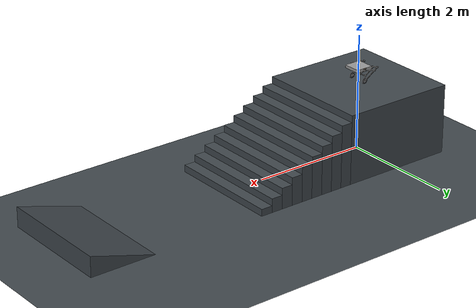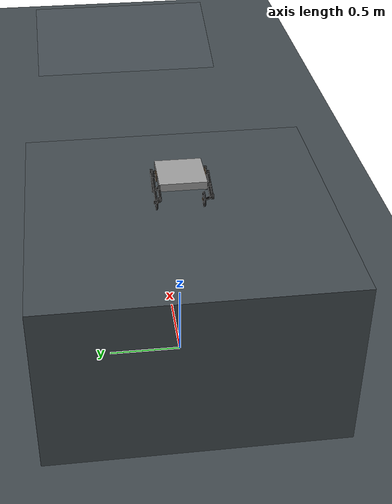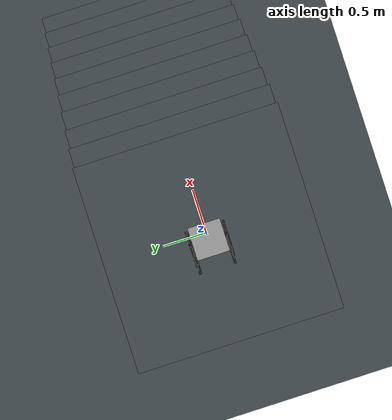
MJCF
<mujoco model="serial_five_link_wheel_leg">
    <compiler angle="degree" autolimits="true"/>
    <option timestep="0.002" integrator="implicitfast" gravity="0 0 -9.81"/>

    <visual>
        <global offwidth="1920" offheight="1080"/>
        <quality shadowsize="8192" offsamples="8" numslices="32" numstacks="32"/>
        <map znear="0.01" zfar="50" shadowclip="2.0" shadowscale="0.5"/>
        <headlight ambient="0.22 0.22 0.22" diffuse="0.35 0.35 0.35" specular="0.08 0.08 0.08"/>
    </visual>

    <statistic center="2.4 0 0.6" extent="5.4"/>

    <default>
        <joint axis="0 1 0" damping="0.01"/>
        <geom rgba="0.25 0.28 0.30 1" contype="1" conaffinity="1"/>
        <default class="leg_link">
            <geom type="box" rgba="0.05 0.05 0.05 1"/>
        </default>
        <default class="joint_marker">
            <geom type="cylinder" size="0.016 0.008 0.016" euler="90 0 0" rgba="0.15 0.15 0.15 1"/>
        </default>
        <default class="wheel">
            <geom type="cylinder" size="0.05" contype="1" conaffinity="1"
                  condim="6" friction="0.8 0.005 0.0001"
                  solref="0.005 1" solimp="0.9 0.95 0.001"/>
        </default>
    </default>

    <asset>
        <texture name="skybox" type="skybox" builtin="gradient"
                 rgb1="0.78 0.84 0.90" rgb2="0.96 0.98 1.00"
                 width="512" height="512"/>
        <material name="ground_mat" rgba="0.55 0.56 0.55 1"
                  reflectance="0.00" specular="0.18" shininess="0.25"/>
        <material name="stair_mat" rgba="0.50 0.43 0.35 1"
                  reflectance="0.00" specular="0.14" shininess="0.20"/>
        <material name="ramp_mat" rgba="0.50 0.43 0.35 1"
                  reflectance="0.00" specular="0.14" shininess="0.20"/>
        <mesh name="ramp_wedge" file="ramp_wedge.stl"/>
    </asset>

    <worldbody>
        <!-- 斜向主光负责投影，补光只提亮暗部，避免默认单顶灯的块状阴影观感 -->
        <light name="key_light" directional="true" castshadow="true"
               ambient="0.06 0.06 0.06" diffuse="0.78 0.76 0.72" specular="0.18 0.18 0.18"
               pos="-2.5 -3.0 4.0" dir="0.45 0.60 -1"/>
        <light name="fill_light" directional="true" castshadow="false"
               ambient="0.03 0.04 0.05" diffuse="0.22 0.24 0.27" specular="0 0 0"
               pos="3.0 4.0 3.0" dir="-0.50 -0.55 -1"/>

        <!-- 相机 -->
        <camera name="overview" pos="1.6 -2.4 1.1" xyaxes="0.832 0.555 0 -0.210 0.315 0.925"/>

        <!-- 地面 -->
        <geom name="ground" type="plane" size="200 200 0.1" contype="1" conaffinity="1"
              material="ground_mat"
              friction="1.0 0.001 0.0001" condim="6"/>

        <!-- 十级下行台阶：沿 +x 方向下降；顶层平台 2m x 2m，其余踏步深度 0.20m；每级落差 0.12m。 -->
        <body name="stairs" pos="0 0 0">
            <geom name="stair_step_10_top" type="box" pos="0.000 0 0.600" size="1.000 1.0 0.600"
                  contype="1" conaffinity="1" condim="6"
                  friction="1.0 0.001 0.0001"
                  material="stair_mat"/>
            <geom name="stair_step_9" type="box" pos="1.100 0 0.540" size="0.100 1.0 0.540"
                  contype="1" conaffinity="1" condim="6"
                  friction="1.0 0.001 0.0001"
                  material="stair_mat"/>
            <geom name="stair_step_8" type="box" pos="1.300 0 0.480" size="0.100 1.0 0.480"
                  contype="1" conaffinity="1" condim="6"
                  friction="1.0 0.001 0.0001"
                  material="stair_mat"/>
            <geom name="stair_step_7" type="box" pos="1.500 0 0.420" size="0.100 1.0 0.420"
                  contype="1" conaffinity="1" condim="6"
                  friction="1.0 0.001 0.0001"
                  material="stair_mat"/>
            <geom name="stair_step_6" type="box" pos="1.700 0 0.360" size="0.100 1.0 0.360"
                  contype="1" conaffinity="1" condim="6"
                  friction="1.0 0.001 0.0001"
                  material="stair_mat"/>
            <geom name="stair_step_5" type="box" pos="1.900 0 0.300" size="0.100 1.0 0.300"
                  contype="1" conaffinity="1" condim="6"
                  friction="1.0 0.001 0.0001"
                  material="stair_mat"/>
            <geom name="stair_step_4" type="box" pos="2.100 0 0.240" size="0.100 1.0 0.240"
                  contype="1" conaffinity="1" condim="6"
                  friction="1.0 0.001 0.0001"
                  material="stair_mat"/>
            <geom name="stair_step_3" type="box" pos="2.300 0 0.180" size="0.100 1.0 0.180"
                  contype="1" conaffinity="1" condim="6"
                  friction="1.0 0.001 0.0001"
                  material="stair_mat"/>
            <geom name="stair_step_2" type="box" pos="2.500 0 0.120" size="0.100 1.0 0.120"
                  contype="1" conaffinity="1" condim="6"
                  friction="1.0 0.001 0.0001"
                  material="stair_mat"/>
            <geom name="stair_step_1_bottom" type="box" pos="2.700 0 0.060" size="0.100 1.0 0.060"
                  contype="1" conaffinity="1" condim="6"
                  friction="1.0 0.001 0.0001"
                  material="stair_mat"/>
        </body>

        <!-- 飞坡：位于台阶末端前方 2.0m。 -->
        <body name="ramp" pos="4.8 0 0">
            <geom name="ramp_geom" type="mesh" mesh="ramp_wedge"
                  contype="1" conaffinity="1" condim="6"
                  friction="1.0 0.001 0.0001"
                  material="ramp_mat"/>
        </body>

        <!-- 基座（车身） -->
        <body name="base" pos="0 0 1.445">
            <freejoint name="base_free"/>
            <inertial pos="0 0 0" mass="15.0"
                      diaginertia="0.22517 0.11593 0.115485"/>
            <site name="imu" pos="0 0 0" size="0.01" rgba="1 0 0 1"/>
            <geom name="base_body" type="box" size="0.15 0.15 0.025" rgba="0.6 0.6 0.6 1"/>
            <geom name="left_hip_mount" type="box" pos="0 0.155 0" size="0.026 0.005 0.026"
                  rgba="0.21 0.16 0.10 1"/>
            <geom name="right_hip_mount" type="box" pos="0 -0.155 0" size="0.026 0.005 0.026"
                  rgba="0.21 0.16 0.10 1"/>

            <!-- ========== 左侧五连杆腿 ========== -->
            <body name="left_front_upper_link" pos="0.0547679943505 0.165 -0.0146750398573">
                <inertial pos="0 0 0" mass="0.13482"
                          diaginertia="3.651375000e-06 1.877543766e-04 1.863500016e-04"/>
                <joint name="left_front_hip_joint" pos="-0.0547679943505 0 0.0146750398573"
                       ref="15" damping="0.05"/>
                <geom name="left_front_upper_geom" class="leg_link"
                      size="0.0642 0.0075 0.0075" euler="0 15 0"/>
                <geom name="left_front_hip_pin" class="joint_marker"
                      pos="-0.0547679943505 0 0.0146750398573"/>

                <body name="left_front_lower_link" pos="0 0.01 -0.0523939581187">
                    <inertial pos="0 0 0" mass="0.1554"
                              diaginertia="4.2087500e-06 2.8657055e-04 2.8495180e-04"/>
                    <joint name="left_front_knee_joint" pos="0.0547679943505 0 0.0377189182614"/>
                    <geom name="left_front_lower_geom" class="leg_link"
                          size="0.074 0.0075 0.0075" euler="0 -34.555326848126 0"/>
                    <geom name="left_front_knee_pin" class="joint_marker"
                          pos="0.0547679943505 0 0.0377189182614"/>

                    <body name="left_lower_bridge_link" pos="-0.1391107056504 -0.01 0.0203682158611">
                        <inertial pos="0 0 0" mass="0.230811"
                                  diaginertia="6.251131250000e-06 9.337426768397e-04 9.313383955897e-04"/>
                        <joint name="left_bridge_joint" pos="0.084342711299 0 -0.0580871341226"/>
                        <geom name="left_lower_bridge_geom" class="leg_link"
                              size="0.10991 0.0075 0.0075" euler="0 34.555326848126 0"/>
                        <geom name="left_bridge_pin" class="joint_marker"
                              pos="0.084342711299 0 -0.0580871341226"/>
                        <site name="left_bridge_rear_connect" pos="-0.0251932774012 0.005 0.0173507024002"
                              size="0.004" rgba="0.86 0.60 0.16 0.75"/>

                        <body name="left_wheel_carrier_link" pos="-0.1309969287096 -0.01 0.0455861742441">
                            <inertial pos="0 0 0" mass="0.11718"
                                      diaginertia="3.173625000e-06 1.238159034e-04 1.225952784e-04"/>
                            <joint name="left_carrier_joint" pos="0.0466542174097 0 0.0125009598784"
                                   range="-50 25"/>
                            <geom name="left_wheel_carrier_geom" class="leg_link"
                                  size="0.0558 0.0075 0.0075" euler="0 -15 0"/>
                            <geom name="left_carrier_pin" class="joint_marker"
                                  pos="0.0466542174097 0 0.0125009598784"/>

                            <body name="left_lower_leg_link" pos="0.0843427112999 0.01 -0.1027190243719">
                                <inertial pos="0 0 0" mass="0.349772111111"
                                          diaginertia="9.472994675923e-06 3.240972841707e-03 3.237329382216e-03"/>
                                <joint name="left_lower_leg_joint" pos="-0.1309969287096 0 0.0902180644934"
                                       range="-23 70"/>
                                <geom name="left_lower_leg_geom" class="leg_link"
                                      size="0.1665581481481 0.0075 0.0075" euler="0 34.555326848126 0"/>
                                <geom name="left_lower_leg_pin" class="joint_marker"
                                      pos="-0.1309969287096 0 0.0902180644934"/>
                                <site name="left_lower_leg_rear_connect" pos="-0.071847494811 0.005 0.0494816327711"
                                      size="0.004" rgba="0.86 0.60 0.16 0.75"/>

                                <body name="left_wheel" pos="0.1309969287096 -0.015 -0.0902180644934">
                                    <inertial pos="0 0.005 0" mass="0.353429173529"
                                              diaginertia="0.000223838477 0.000223838477 0.000441786467"/>
                                    <joint name="left_wheel_joint" pos="0 0 0" limited="false"/>
                                    <geom name="left_wheel_geom" class="wheel" fromto="0 0 0 0 0.01 0"
                                          rgba="0.04 0.04 0.045 1"/>
                                    <geom name="left_wheel_hub_geom" type="cylinder" fromto="0 -0.001 0 0 0.011 0"
                                          size="0.028" rgba="0.15 0.16 0.18 1"/>
                                    <geom name="left_wheel_axle_geom" type="cylinder" fromto="0 -0.008 0 0 0.018 0"
                                          size="0.010" rgba="0.21 0.16 0.10 1"/>
                                </body>
                            </body>
                        </body>
                    </body>
                </body>
            </body>

            <body name="left_rear_upper_link" pos="-0.1014222117603 0.175 -0.0271759997357">
                <inertial pos="0 0 0" mass="0.23625"
                          diaginertia="6.398437500e-06 1.001109375e-03 9.986484375e-04"/>
                <joint name="left_rear_hip_joint" pos="0.1014222117603 0 0.0271759997357" ref="165"/>
                <geom name="left_rear_upper_geom" class="leg_link"
                      size="0.1125 0.0075 0.0075" euler="0 -15 0"/>
                <geom name="left_rear_hip_pin" class="joint_marker"
                      pos="0.1014222117603 0 0.0271759997357"/>
                <site name="left_rear_to_bridge_connect" pos="-0.0081137769408 -0.005 -0.0021740799788"
                      size="0.004" rgba="0.86 0.60 0.16 0.75"/>
                <site name="left_rear_to_lower_connect" pos="-0.1014222117603 -0.005 -0.0271759997357"
                      size="0.004" rgba="0.86 0.60 0.16 0.75"/>
            </body>

            <!-- ========== 右侧五连杆腿 ========== -->
            <body name="right_front_upper_link" pos="0.0547679943505 -0.165 -0.0146750398573">
                <inertial pos="0 0 0" mass="0.13482"
                          diaginertia="3.651375000e-06 1.877543766e-04 1.863500016e-04"/>
                <joint name="right_front_hip_joint" pos="-0.0547679943505 0 0.0146750398573"
                       ref="15" damping="0.05"/>
                <geom name="right_front_upper_geom" class="leg_link"
                      size="0.0642 0.0075 0.0075" euler="0 15 0"/>
                <geom name="right_front_hip_pin" class="joint_marker"
                      pos="-0.0547679943505 0 0.0146750398573"/>

                <body name="right_front_lower_link" pos="0 -0.01 -0.0523939581187">
                    <inertial pos="0 0 0" mass="0.1554"
                              diaginertia="4.2087500e-06 2.8657055e-04 2.8495180e-04"/>
                    <joint name="right_front_knee_joint" pos="0.0547679943505 0 0.0377189182614"/>
                    <geom name="right_front_lower_geom" class="leg_link"
                          size="0.074 0.0075 0.0075" euler="0 -34.555326848126 0"/>
                    <geom name="right_front_knee_pin" class="joint_marker"
                          pos="0.0547679943505 0 0.0377189182614"/>

                    <body name="right_lower_bridge_link" pos="-0.1391107056504 0.01 0.0203682158611">
                        <inertial pos="0 0 0" mass="0.230811"
                                  diaginertia="6.251131250000e-06 9.337426768397e-04 9.313383955897e-04"/>
                        <joint name="right_bridge_joint" pos="0.084342711299 0 -0.0580871341226"/>
                        <geom name="right_lower_bridge_geom" class="leg_link"
                              size="0.10991 0.0075 0.0075" euler="0 34.555326848126 0"/>
                        <geom name="right_bridge_pin" class="joint_marker"
                              pos="0.084342711299 0 -0.0580871341226"/>
                        <site name="right_bridge_rear_connect" pos="-0.0251932774012 -0.005 0.0173507024002"
                              size="0.004" rgba="0.86 0.60 0.16 0.75"/>

                        <body name="right_wheel_carrier_link" pos="-0.1309969287096 0.01 0.0455861742441">
                            <inertial pos="0 0 0" mass="0.11718"
                                      diaginertia="3.173625000e-06 1.238159034e-04 1.225952784e-04"/>
                            <joint name="right_carrier_joint" pos="0.0466542174097 0 0.0125009598784"
                                   range="-50 25"/>
                            <geom name="right_wheel_carrier_geom" class="leg_link"
                                  size="0.0558 0.0075 0.0075" euler="0 -15 0"/>
                            <geom name="right_carrier_pin" class="joint_marker"
                                  pos="0.0466542174097 0 0.0125009598784"/>

                            <body name="right_lower_leg_link" pos="0.0843427112999 -0.01 -0.1027190243719">
                                <inertial pos="0 0 0" mass="0.349772111111"
                                          diaginertia="9.472994675923e-06 3.240972841707e-03 3.237329382216e-03"/>
                                <joint name="right_lower_leg_joint" pos="-0.1309969287096 0 0.0902180644934"
                                       range="-23 70"/>
                                <geom name="right_lower_leg_geom" class="leg_link"
                                      size="0.1665581481481 0.0075 0.0075" euler="0 34.555326848126 0"/>
                                <geom name="right_lower_leg_pin" class="joint_marker"
                                      pos="-0.1309969287096 0 0.0902180644934"/>
                                <site name="right_lower_leg_rear_connect" pos="-0.071847494811 -0.005 0.0494816327711"
                                      size="0.004" rgba="0.86 0.60 0.16 0.75"/>

                                <body name="right_wheel" pos="0.1309969287096 0.015 -0.0902180644934">
                                    <inertial pos="0 -0.005 0" mass="0.353429173529"
                                              diaginertia="0.000223838477 0.000223838477 0.000441786467"/>
                                    <joint name="right_wheel_joint" pos="0 0 0" limited="false"/>
                                    <geom name="right_wheel_geom" class="wheel" fromto="0 0 0 0 -0.01 0"
                                          rgba="0.04 0.04 0.045 1"/>
                                    <geom name="right_wheel_hub_geom" type="cylinder" fromto="0 0.001 0 0 -0.011 0"
                                          size="0.028" rgba="0.15 0.16 0.18 1"/>
                                    <geom name="right_wheel_axle_geom" type="cylinder" fromto="0 0.008 0 0 -0.018 0"
                                          size="0.010" rgba="0.21 0.16 0.10 1"/>
                                </body>
                            </body>
                        </body>
                    </body>
                </body>
            </body>

            <body name="right_rear_upper_link" pos="-0.1014222117603 -0.175 -0.0271759997357">
                <inertial pos="0 0 0" mass="0.23625"
                          diaginertia="6.398437500e-06 1.001109375e-03 9.986484375e-04"/>
                <joint name="right_rear_hip_joint" pos="0.1014222117603 0 0.0271759997357" ref="165"/>
                <geom name="right_rear_upper_geom" class="leg_link"
                      size="0.1125 0.0075 0.0075" euler="0 -15 0"/>
                <geom name="right_rear_hip_pin" class="joint_marker"
                      pos="0.1014222117603 0 0.0271759997357"/>
                <site name="right_rear_to_bridge_connect" pos="-0.0081137769408 0.005 -0.0021740799788"
                      size="0.004" rgba="0.86 0.60 0.16 0.75"/>
                <site name="right_rear_to_lower_connect" pos="-0.1014222117603 0.005 -0.0271759997357"
                      size="0.004" rgba="0.86 0.60 0.16 0.75"/>
            </body>
        </body>
    </worldbody>

    <!-- 闭环约束 -->
    <equality>
        <connect name="left_rear_bridge_loop" site1="left_rear_to_bridge_connect" site2="left_bridge_rear_connect"
                 solref="0.002 1"/>
        <connect name="left_rear_lower_loop" site1="left_rear_to_lower_connect" site2="left_lower_leg_rear_connect"
                 solref="0.002 1"/>
        <connect name="right_rear_bridge_loop" site1="right_rear_to_bridge_connect" site2="right_bridge_rear_connect"
                 solref="0.002 1"/>
        <connect name="right_rear_lower_loop" site1="right_rear_to_lower_connect" site2="right_lower_leg_rear_connect"
                 solref="0.002 1"/>
    </equality>

    <!-- 执行器 -->
    <actuator>
        <motor name="left_front_hip_motor" joint="left_front_hip_joint" gear="1" ctrlrange="-50 50"/>
        <motor name="right_front_hip_motor" joint="right_front_hip_joint" gear="1" ctrlrange="-50 50"/>
        <motor name="left_rear_hip_motor" joint="left_rear_hip_joint" gear="1" ctrlrange="-50 50"/>
        <motor name="right_rear_hip_motor" joint="right_rear_hip_joint" gear="1" ctrlrange="-50 50"/>
        <motor name="left_wheel_motor" joint="left_wheel_joint" gear="1" ctrlrange="-5 5"/>
        <motor name="right_wheel_motor" joint="right_wheel_joint" gear="1" ctrlrange="-5 5"/>
    </actuator>

    <!-- 传感器 -->
    <sensor>
        <gyro name="imu_gyro" site="imu"/>
        <framequat name="imu_quat" objtype="site" objname="imu"/>
        <accelerometer name="imu_accel" site="imu"/>
        <framepos name="base_pos" objtype="site" objname="imu"/>
        <framelinvel name="base_linvel" objtype="site" objname="imu"/>

        <jointpos name="left_front_hip_pos" joint="left_front_hip_joint"/>
        <jointvel name="left_front_hip_vel" joint="left_front_hip_joint"/>
        <jointpos name="left_rear_hip_pos" joint="left_rear_hip_joint"/>
        <jointvel name="left_rear_hip_vel" joint="left_rear_hip_joint"/>
        <jointpos name="right_front_hip_pos" joint="right_front_hip_joint"/>
        <jointvel name="right_front_hip_vel" joint="right_front_hip_joint"/>
        <jointpos name="right_rear_hip_pos" joint="right_rear_hip_joint"/>
        <jointvel name="right_rear_hip_vel" joint="right_rear_hip_joint"/>
        <jointpos name="left_wheel_pos" joint="left_wheel_joint"/>
        <jointvel name="left_wheel_vel" joint="left_wheel_joint"/>
        <jointpos name="right_wheel_pos" joint="right_wheel_joint"/>
        <jointvel name="right_wheel_vel" joint="right_wheel_joint"/>

        <actuatorfrc name="left_front_hip_force" actuator="left_front_hip_motor"/>
        <actuatorfrc name="right_front_hip_force" actuator="right_front_hip_motor"/>
        <actuatorfrc name="left_rear_hip_force" actuator="left_rear_hip_motor"/>
        <actuatorfrc name="right_rear_hip_force" actuator="right_rear_hip_motor"/>
        <actuatorfrc name="left_wheel_force" actuator="left_wheel_motor"/>
        <actuatorfrc name="right_wheel_force" actuator="right_wheel_motor"/>
    </sensor>
</mujoco>
